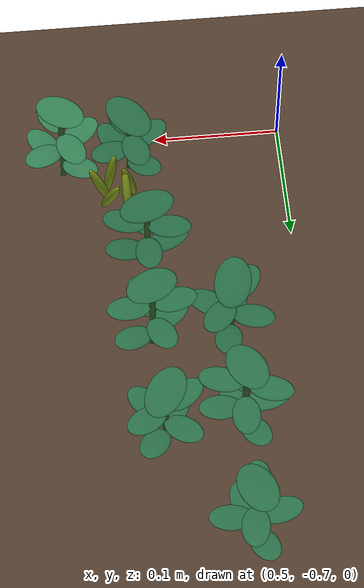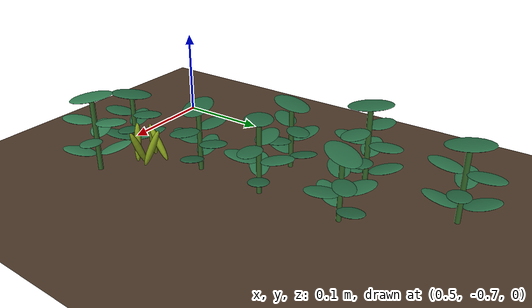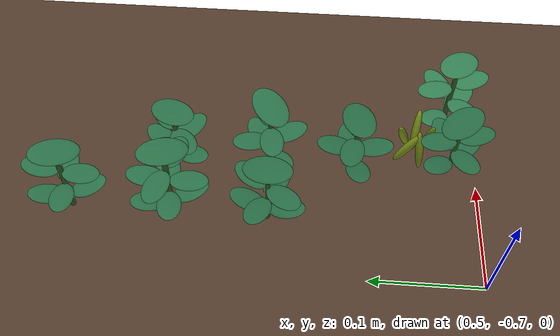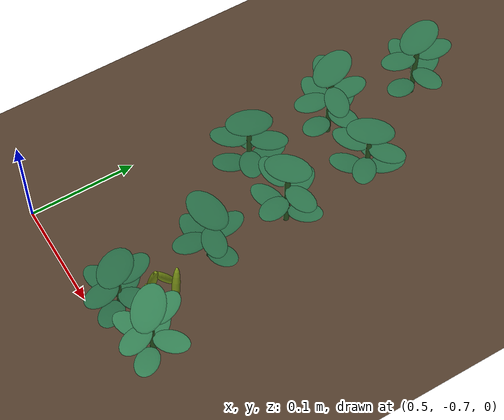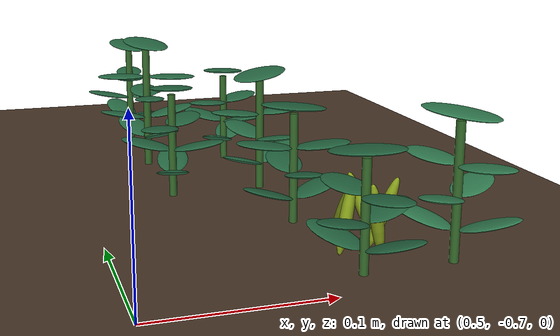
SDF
<sdf version="1.9">
 <world name="jim_field">
  <model name="ground_plane">
   <static>true</static>
   <link name="link">
    <collision name="collision">
     <geometry><plane><normal>0 0 1</normal><size>40 40</size></plane></geometry>
    </collision>
    <visual name="visual">
     <geometry><plane><normal>0 0 1</normal><size>40 40</size></plane></geometry>
     <material>
      <ambient>0.20 0.15 0.11 1</ambient>
      <diffuse>0.30 0.22 0.16 1</diffuse>
      <specular>0.01 0.01 0.01 1</specular>
     </material>
    </visual>
   </link>
  </model>
  <model name="field">
   <static>true</static>
   <pose>0.1837 -0.2516 0 0 0 0</pose>
   <model name="crop_15">
    <static>true</static>
    <pose>0.4390 -0.4249 0 0 0 0</pose>
    <link name="link">
     <visual name="stem">
      <pose>0 0 0.0314 0 0 0</pose>
      <geometry><cylinder><radius>0.0025</radius><length>0.0627</length></cylinder></geometry>
      <material>
       <ambient>0.10 0.22 0.09 1</ambient>
       <diffuse>0.20 0.40 0.16 1</diffuse>
       <specular>0.05 0.06 0.05 1</specular>
      </material>
     </visual>
     <visual name="leaflet_0_0">
      <pose>0.0111 -0.0133 0.0188 0 -0.300 5.4077</pose>
      <geometry><ellipsoid><radii>0.0170 0.0105 0.0016</radii></ellipsoid></geometry>
      <material>
       <ambient>0.075 0.208 0.116 1</ambient>
       <diffuse>0.139 0.395 0.251 1</diffuse>
       <specular>0.05 0.06 0.05 1</specular>
      </material>
     </visual>
     <visual name="leaflet_0_1">
      <pose>-0.0111 0.0133 0.0188 0 -0.300 8.5493</pose>
      <geometry><ellipsoid><radii>0.0170 0.0105 0.0016</radii></ellipsoid></geometry>
      <material>
       <ambient>0.075 0.208 0.116 1</ambient>
       <diffuse>0.139 0.395 0.251 1</diffuse>
       <specular>0.05 0.06 0.05 1</specular>
      </material>
     </visual>
     <visual name="leaflet_1_0">
      <pose>0.0154 0.0079 0.0318 0 -0.200 6.7577</pose>
      <geometry><ellipsoid><radii>0.0170 0.0105 0.0016</radii></ellipsoid></geometry>
      <material>
       <ambient>0.075 0.208 0.116 1</ambient>
       <diffuse>0.139 0.395 0.251 1</diffuse>
       <specular>0.05 0.06 0.05 1</specular>
      </material>
     </visual>
     <visual name="leaflet_1_1">
      <pose>-0.0154 -0.0079 0.0318 0 -0.200 9.8993</pose>
      <geometry><ellipsoid><radii>0.0170 0.0105 0.0016</radii></ellipsoid></geometry>
      <material>
       <ambient>0.075 0.208 0.116 1</ambient>
       <diffuse>0.139 0.395 0.251 1</diffuse>
       <specular>0.05 0.06 0.05 1</specular>
      </material>
     </visual>
     <visual name="leaflet_2_0">
      <pose>-0.0044 0.0168 0.0447 0 -0.100 8.1077</pose>
      <geometry><ellipsoid><radii>0.0170 0.0105 0.0016</radii></ellipsoid></geometry>
      <material>
       <ambient>0.075 0.208 0.116 1</ambient>
       <diffuse>0.139 0.395 0.251 1</diffuse>
       <specular>0.05 0.06 0.05 1</specular>
      </material>
     </visual>
     <visual name="leaflet_2_1">
      <pose>0.0044 -0.0168 0.0447 0 -0.100 11.2493</pose>
      <geometry><ellipsoid><radii>0.0170 0.0105 0.0016</radii></ellipsoid></geometry>
      <material>
       <ambient>0.075 0.208 0.116 1</ambient>
       <diffuse>0.139 0.395 0.251 1</diffuse>
       <specular>0.05 0.06 0.05 1</specular>
      </material>
     </visual>
     <visual name="leaflet_terminal">
      <pose>0 0 0.0667 0 -0.12 5.4077</pose>
      <geometry><ellipsoid><radii>0.0215 0.0140 0.0018</radii></ellipsoid></geometry>
      <material>
       <ambient>0.075 0.208 0.116 1</ambient>
       <diffuse>0.139 0.395 0.251 1</diffuse>
       <specular>0.05 0.06 0.05 1</specular>
      </material>
     </visual>
    </link>
   </model>
   <model name="crop_16">
    <static>true</static>
    <pose>0.4926 -0.4225 0 0 0 0</pose>
    <link name="link">
     <visual name="stem">
      <pose>0 0 0.0389 0 0 0</pose>
      <geometry><cylinder><radius>0.0026</radius><length>0.0779</length></cylinder></geometry>
      <material>
       <ambient>0.10 0.22 0.09 1</ambient>
       <diffuse>0.20 0.40 0.16 1</diffuse>
       <specular>0.05 0.06 0.05 1</specular>
      </material>
     </visual>
     <visual name="leaflet_0_0">
      <pose>-0.0133 0.0123 0.0234 0 -0.300 2.3966</pose>
      <geometry><ellipsoid><radii>0.0170 0.0105 0.0016</radii></ellipsoid></geometry>
      <material>
       <ambient>0.100 0.250 0.150 1</ambient>
       <diffuse>0.190 0.480 0.310 1</diffuse>
       <specular>0.05 0.06 0.05 1</specular>
      </material>
     </visual>
     <visual name="leaflet_0_1">
      <pose>0.0133 -0.0123 0.0234 0 -0.300 5.5382</pose>
      <geometry><ellipsoid><radii>0.0170 0.0105 0.0016</radii></ellipsoid></geometry>
      <material>
       <ambient>0.100 0.250 0.150 1</ambient>
       <diffuse>0.190 0.480 0.310 1</diffuse>
       <specular>0.05 0.06 0.05 1</specular>
      </material>
     </visual>
     <visual name="leaflet_1_0">
      <pose>-0.0149 -0.0103 0.0395 0 -0.200 3.7466</pose>
      <geometry><ellipsoid><radii>0.0170 0.0105 0.0016</radii></ellipsoid></geometry>
      <material>
       <ambient>0.100 0.250 0.150 1</ambient>
       <diffuse>0.190 0.480 0.310 1</diffuse>
       <specular>0.05 0.06 0.05 1</specular>
      </material>
     </visual>
     <visual name="leaflet_1_1">
      <pose>0.0149 0.0103 0.0395 0 -0.200 6.8882</pose>
      <geometry><ellipsoid><radii>0.0170 0.0105 0.0016</radii></ellipsoid></geometry>
      <material>
       <ambient>0.100 0.250 0.150 1</ambient>
       <diffuse>0.190 0.480 0.310 1</diffuse>
       <specular>0.05 0.06 0.05 1</specular>
      </material>
     </visual>
     <visual name="leaflet_2_0">
      <pose>0.0068 -0.0168 0.0556 0 -0.100 5.0966</pose>
      <geometry><ellipsoid><radii>0.0170 0.0105 0.0016</radii></ellipsoid></geometry>
      <material>
       <ambient>0.100 0.250 0.150 1</ambient>
       <diffuse>0.190 0.480 0.310 1</diffuse>
       <specular>0.05 0.06 0.05 1</specular>
      </material>
     </visual>
     <visual name="leaflet_2_1">
      <pose>-0.0068 0.0168 0.0556 0 -0.100 8.2382</pose>
      <geometry><ellipsoid><radii>0.0170 0.0105 0.0016</radii></ellipsoid></geometry>
      <material>
       <ambient>0.100 0.250 0.150 1</ambient>
       <diffuse>0.190 0.480 0.310 1</diffuse>
       <specular>0.05 0.06 0.05 1</specular>
      </material>
     </visual>
     <visual name="leaflet_terminal">
      <pose>0 0 0.0819 0 -0.12 2.3966</pose>
      <geometry><ellipsoid><radii>0.0215 0.0140 0.0018</radii></ellipsoid></geometry>
      <material>
       <ambient>0.100 0.250 0.150 1</ambient>
       <diffuse>0.190 0.480 0.310 1</diffuse>
       <specular>0.05 0.06 0.05 1</specular>
      </material>
     </visual>
    </link>
   </model>
   <model name="crop_32">
    <static>true</static>
    <pose>0.4324 -0.3349 0 0 0 0</pose>
    <link name="link">
     <visual name="stem">
      <pose>0 0 0.0337 0 0 0</pose>
      <geometry><cylinder><radius>0.0025</radius><length>0.0675</length></cylinder></geometry>
      <material>
       <ambient>0.10 0.22 0.09 1</ambient>
       <diffuse>0.20 0.40 0.16 1</diffuse>
       <specular>0.05 0.06 0.05 1</specular>
      </material>
     </visual>
     <visual name="leaflet_0_0">
      <pose>-0.0171 -0.0039 0.0202 0 -0.300 3.3679</pose>
      <geometry><ellipsoid><radii>0.0170 0.0105 0.0016</radii></ellipsoid></geometry>
      <material>
       <ambient>0.074 0.207 0.116 1</ambient>
       <diffuse>0.138 0.394 0.250 1</diffuse>
       <specular>0.05 0.06 0.05 1</specular>
      </material>
     </visual>
     <visual name="leaflet_0_1">
      <pose>0.0171 0.0039 0.0202 0 -0.300 6.5095</pose>
      <geometry><ellipsoid><radii>0.0170 0.0105 0.0016</radii></ellipsoid></geometry>
      <material>
       <ambient>0.074 0.207 0.116 1</ambient>
       <diffuse>0.138 0.394 0.250 1</diffuse>
       <specular>0.05 0.06 0.05 1</specular>
      </material>
     </visual>
     <visual name="leaflet_1_0">
      <pose>0.0001 -0.0176 0.0342 0 -0.200 4.7179</pose>
      <geometry><ellipsoid><radii>0.0170 0.0105 0.0016</radii></ellipsoid></geometry>
      <material>
       <ambient>0.074 0.207 0.116 1</ambient>
       <diffuse>0.138 0.394 0.250 1</diffuse>
       <specular>0.05 0.06 0.05 1</specular>
      </material>
     </visual>
     <visual name="leaflet_1_1">
      <pose>-0.0001 0.0176 0.0342 0 -0.200 7.8595</pose>
      <geometry><ellipsoid><radii>0.0170 0.0105 0.0016</radii></ellipsoid></geometry>
      <material>
       <ambient>0.074 0.207 0.116 1</ambient>
       <diffuse>0.138 0.394 0.250 1</diffuse>
       <specular>0.05 0.06 0.05 1</specular>
      </material>
     </visual>
     <visual name="leaflet_2_0">
      <pose>0.0172 -0.0038 0.0481 0 -0.100 6.0679</pose>
      <geometry><ellipsoid><radii>0.0170 0.0105 0.0016</radii></ellipsoid></geometry>
      <material>
       <ambient>0.074 0.207 0.116 1</ambient>
       <diffuse>0.138 0.394 0.250 1</diffuse>
       <specular>0.05 0.06 0.05 1</specular>
      </material>
     </visual>
     <visual name="leaflet_2_1">
      <pose>-0.0172 0.0038 0.0481 0 -0.100 9.2095</pose>
      <geometry><ellipsoid><radii>0.0170 0.0105 0.0016</radii></ellipsoid></geometry>
      <material>
       <ambient>0.074 0.207 0.116 1</ambient>
       <diffuse>0.138 0.394 0.250 1</diffuse>
       <specular>0.05 0.06 0.05 1</specular>
      </material>
     </visual>
     <visual name="leaflet_terminal">
      <pose>0 0 0.0715 0 -0.12 3.3679</pose>
      <geometry><ellipsoid><radii>0.0215 0.0140 0.0018</radii></ellipsoid></geometry>
      <material>
       <ambient>0.074 0.207 0.116 1</ambient>
       <diffuse>0.138 0.394 0.250 1</diffuse>
       <specular>0.05 0.06 0.05 1</specular>
      </material>
     </visual>
    </link>
   </model>
   <model name="crop_48">
    <static>true</static>
    <pose>0.3744 -0.2598 0 0 0 0</pose>
    <link name="link">
     <visual name="stem">
      <pose>0 0 0.0342 0 0 0</pose>
      <geometry><cylinder><radius>0.0025</radius><length>0.0685</length></cylinder></geometry>
      <material>
       <ambient>0.10 0.22 0.09 1</ambient>
       <diffuse>0.20 0.40 0.16 1</diffuse>
       <specular>0.05 0.06 0.05 1</specular>
      </material>
     </visual>
     <visual name="leaflet_0_0">
      <pose>-0.0036 -0.0173 0.0205 0 -0.300 4.5066</pose>
      <geometry><ellipsoid><radii>0.0170 0.0105 0.0016</radii></ellipsoid></geometry>
      <material>
       <ambient>0.076 0.210 0.118 1</ambient>
       <diffuse>0.142 0.400 0.254 1</diffuse>
       <specular>0.05 0.06 0.05 1</specular>
      </material>
     </visual>
     <visual name="leaflet_0_1">
      <pose>0.0036 0.0173 0.0205 0 -0.300 7.6482</pose>
      <geometry><ellipsoid><radii>0.0170 0.0105 0.0016</radii></ellipsoid></geometry>
      <material>
       <ambient>0.076 0.210 0.118 1</ambient>
       <diffuse>0.142 0.400 0.254 1</diffuse>
       <specular>0.05 0.06 0.05 1</specular>
      </material>
     </visual>
     <visual name="leaflet_1_0">
      <pose>0.0161 -0.0073 0.0347 0 -0.200 5.8566</pose>
      <geometry><ellipsoid><radii>0.0170 0.0105 0.0016</radii></ellipsoid></geometry>
      <material>
       <ambient>0.076 0.210 0.118 1</ambient>
       <diffuse>0.142 0.400 0.254 1</diffuse>
       <specular>0.05 0.06 0.05 1</specular>
      </material>
     </visual>
     <visual name="leaflet_1_1">
      <pose>-0.0161 0.0073 0.0347 0 -0.200 8.9982</pose>
      <geometry><ellipsoid><radii>0.0170 0.0105 0.0016</radii></ellipsoid></geometry>
      <material>
       <ambient>0.076 0.210 0.118 1</ambient>
       <diffuse>0.142 0.400 0.254 1</diffuse>
       <specular>0.05 0.06 0.05 1</specular>
      </material>
     </visual>
     <visual name="leaflet_2_0">
      <pose>0.0106 0.0141 0.0488 0 -0.100 7.2066</pose>
      <geometry><ellipsoid><radii>0.0170 0.0105 0.0016</radii></ellipsoid></geometry>
      <material>
       <ambient>0.076 0.210 0.118 1</ambient>
       <diffuse>0.142 0.400 0.254 1</diffuse>
       <specular>0.05 0.06 0.05 1</specular>
      </material>
     </visual>
     <visual name="leaflet_2_1">
      <pose>-0.0106 -0.0141 0.0488 0 -0.100 10.3482</pose>
      <geometry><ellipsoid><radii>0.0170 0.0105 0.0016</radii></ellipsoid></geometry>
      <material>
       <ambient>0.076 0.210 0.118 1</ambient>
       <diffuse>0.142 0.400 0.254 1</diffuse>
       <specular>0.05 0.06 0.05 1</specular>
      </material>
     </visual>
     <visual name="leaflet_terminal">
      <pose>0 0 0.0725 0 -0.12 4.5066</pose>
      <geometry><ellipsoid><radii>0.0215 0.0140 0.0018</radii></ellipsoid></geometry>
      <material>
       <ambient>0.076 0.210 0.118 1</ambient>
       <diffuse>0.142 0.400 0.254 1</diffuse>
       <specular>0.05 0.06 0.05 1</specular>
      </material>
     </visual>
    </link>
   </model>
   <model name="crop_49">
    <static>true</static>
    <pose>0.4353 -0.2583 0 0 0 0</pose>
    <link name="link">
     <visual name="stem">
      <pose>0 0 0.0373 0 0 0</pose>
      <geometry><cylinder><radius>0.0026</radius><length>0.0747</length></cylinder></geometry>
      <material>
       <ambient>0.10 0.22 0.09 1</ambient>
       <diffuse>0.20 0.40 0.16 1</diffuse>
       <specular>0.05 0.06 0.05 1</specular>
      </material>
     </visual>
     <visual name="leaflet_0_0">
      <pose>0.0150 0.0098 0.0224 0 -0.300 0.5796</pose>
      <geometry><ellipsoid><radii>0.0170 0.0105 0.0016</radii></ellipsoid></geometry>
      <material>
       <ambient>0.083 0.221 0.127 1</ambient>
       <diffuse>0.155 0.422 0.270 1</diffuse>
       <specular>0.05 0.06 0.05 1</specular>
      </material>
     </visual>
     <visual name="leaflet_0_1">
      <pose>-0.0150 -0.0098 0.0224 0 -0.300 3.7212</pose>
      <geometry><ellipsoid><radii>0.0170 0.0105 0.0016</radii></ellipsoid></geometry>
      <material>
       <ambient>0.083 0.221 0.127 1</ambient>
       <diffuse>0.155 0.422 0.270 1</diffuse>
       <specular>0.05 0.06 0.05 1</specular>
      </material>
     </visual>
     <visual name="leaflet_1_0">
      <pose>-0.0063 0.0168 0.0378 0 -0.200 1.9296</pose>
      <geometry><ellipsoid><radii>0.0170 0.0105 0.0016</radii></ellipsoid></geometry>
      <material>
       <ambient>0.083 0.221 0.127 1</ambient>
       <diffuse>0.155 0.422 0.270 1</diffuse>
       <specular>0.05 0.06 0.05 1</specular>
      </material>
     </visual>
     <visual name="leaflet_1_1">
      <pose>0.0063 -0.0168 0.0378 0 -0.200 5.0712</pose>
      <geometry><ellipsoid><radii>0.0170 0.0105 0.0016</radii></ellipsoid></geometry>
      <material>
       <ambient>0.083 0.221 0.127 1</ambient>
       <diffuse>0.155 0.422 0.270 1</diffuse>
       <specular>0.05 0.06 0.05 1</specular>
      </material>
     </visual>
     <visual name="leaflet_2_0">
      <pose>-0.0178 -0.0025 0.0533 0 -0.100 3.2796</pose>
      <geometry><ellipsoid><radii>0.0170 0.0105 0.0016</radii></ellipsoid></geometry>
      <material>
       <ambient>0.083 0.221 0.127 1</ambient>
       <diffuse>0.155 0.422 0.270 1</diffuse>
       <specular>0.05 0.06 0.05 1</specular>
      </material>
     </visual>
     <visual name="leaflet_2_1">
      <pose>0.0178 0.0025 0.0533 0 -0.100 6.4212</pose>
      <geometry><ellipsoid><radii>0.0170 0.0105 0.0016</radii></ellipsoid></geometry>
      <material>
       <ambient>0.083 0.221 0.127 1</ambient>
       <diffuse>0.155 0.422 0.270 1</diffuse>
       <specular>0.05 0.06 0.05 1</specular>
      </material>
     </visual>
     <visual name="leaflet_terminal">
      <pose>0 0 0.0787 0 -0.12 0.5796</pose>
      <geometry><ellipsoid><radii>0.0215 0.0140 0.0018</radii></ellipsoid></geometry>
      <material>
       <ambient>0.083 0.221 0.127 1</ambient>
       <diffuse>0.155 0.422 0.270 1</diffuse>
       <specular>0.05 0.06 0.05 1</specular>
      </material>
     </visual>
    </link>
   </model>
   <model name="crop_65">
    <static>true</static>
    <pose>0.3736 -0.1753 0 0 0 0</pose>
    <link name="link">
     <visual name="stem">
      <pose>0 0 0.0435 0 0 0</pose>
      <geometry><cylinder><radius>0.0027</radius><length>0.0870</length></cylinder></geometry>
      <material>
       <ambient>0.10 0.22 0.09 1</ambient>
       <diffuse>0.20 0.40 0.16 1</diffuse>
       <specular>0.05 0.06 0.05 1</specular>
      </material>
     </visual>
     <visual name="leaflet_0_0">
      <pose>-0.0068 0.0174 0.0261 0 -0.300 1.9423</pose>
      <geometry><ellipsoid><radii>0.0170 0.0105 0.0016</radii></ellipsoid></geometry>
      <material>
       <ambient>0.082 0.220 0.126 1</ambient>
       <diffuse>0.155 0.421 0.269 1</diffuse>
       <specular>0.05 0.06 0.05 1</specular>
      </material>
     </visual>
     <visual name="leaflet_0_1">
      <pose>0.0068 -0.0174 0.0261 0 -0.300 5.0839</pose>
      <geometry><ellipsoid><radii>0.0170 0.0105 0.0016</radii></ellipsoid></geometry>
      <material>
       <ambient>0.082 0.220 0.126 1</ambient>
       <diffuse>0.155 0.421 0.269 1</diffuse>
       <specular>0.05 0.06 0.05 1</specular>
      </material>
     </visual>
     <visual name="leaflet_1_0">
      <pose>-0.0184 -0.0028 0.0396 0 -0.200 3.2923</pose>
      <geometry><ellipsoid><radii>0.0170 0.0105 0.0016</radii></ellipsoid></geometry>
      <material>
       <ambient>0.082 0.220 0.126 1</ambient>
       <diffuse>0.155 0.421 0.269 1</diffuse>
       <specular>0.05 0.06 0.05 1</specular>
      </material>
     </visual>
     <visual name="leaflet_1_1">
      <pose>0.0184 0.0028 0.0396 0 -0.200 6.4339</pose>
      <geometry><ellipsoid><radii>0.0170 0.0105 0.0016</radii></ellipsoid></geometry>
      <material>
       <ambient>0.082 0.220 0.126 1</ambient>
       <diffuse>0.155 0.421 0.269 1</diffuse>
       <specular>0.05 0.06 0.05 1</specular>
      </material>
     </visual>
     <visual name="leaflet_2_0">
      <pose>-0.0013 -0.0186 0.0531 0 -0.100 4.6423</pose>
      <geometry><ellipsoid><radii>0.0170 0.0105 0.0016</radii></ellipsoid></geometry>
      <material>
       <ambient>0.082 0.220 0.126 1</ambient>
       <diffuse>0.155 0.421 0.269 1</diffuse>
       <specular>0.05 0.06 0.05 1</specular>
      </material>
     </visual>
     <visual name="leaflet_2_1">
      <pose>0.0013 0.0186 0.0531 0 -0.100 7.7839</pose>
      <geometry><ellipsoid><radii>0.0170 0.0105 0.0016</radii></ellipsoid></geometry>
      <material>
       <ambient>0.082 0.220 0.126 1</ambient>
       <diffuse>0.155 0.421 0.269 1</diffuse>
       <specular>0.05 0.06 0.05 1</specular>
      </material>
     </visual>
     <visual name="leaflet_3_0">
      <pose>0.0179 -0.0053 0.0666 0 0.000 5.9923</pose>
      <geometry><ellipsoid><radii>0.0170 0.0105 0.0016</radii></ellipsoid></geometry>
      <material>
       <ambient>0.082 0.220 0.126 1</ambient>
       <diffuse>0.155 0.421 0.269 1</diffuse>
       <specular>0.05 0.06 0.05 1</specular>
      </material>
     </visual>
     <visual name="leaflet_3_1">
      <pose>-0.0179 0.0053 0.0666 0 0.000 9.1339</pose>
      <geometry><ellipsoid><radii>0.0170 0.0105 0.0016</radii></ellipsoid></geometry>
      <material>
       <ambient>0.082 0.220 0.126 1</ambient>
       <diffuse>0.155 0.421 0.269 1</diffuse>
       <specular>0.05 0.06 0.05 1</specular>
      </material>
     </visual>
     <visual name="leaflet_terminal">
      <pose>0 0 0.0910 0 -0.12 1.9423</pose>
      <geometry><ellipsoid><radii>0.0215 0.0140 0.0018</radii></ellipsoid></geometry>
      <material>
       <ambient>0.082 0.220 0.126 1</ambient>
       <diffuse>0.155 0.421 0.269 1</diffuse>
       <specular>0.05 0.06 0.05 1</specular>
      </material>
     </visual>
    </link>
   </model>
   <model name="crop_66">
    <static>true</static>
    <pose>0.4330 -0.1729 0 0 0 0</pose>
    <link name="link">
     <visual name="stem">
      <pose>0 0 0.0319 0 0 0</pose>
      <geometry><cylinder><radius>0.0025</radius><length>0.0638</length></cylinder></geometry>
      <material>
       <ambient>0.10 0.22 0.09 1</ambient>
       <diffuse>0.20 0.40 0.16 1</diffuse>
       <specular>0.05 0.06 0.05 1</specular>
      </material>
     </visual>
     <visual name="leaflet_0_0">
      <pose>-0.0089 -0.0150 0.0191 0 -0.300 4.1758</pose>
      <geometry><ellipsoid><radii>0.0170 0.0105 0.0016</radii></ellipsoid></geometry>
      <material>
       <ambient>0.081 0.219 0.125 1</ambient>
       <diffuse>0.153 0.418 0.267 1</diffuse>
       <specular>0.05 0.06 0.05 1</specular>
      </material>
     </visual>
     <visual name="leaflet_0_1">
      <pose>0.0089 0.0150 0.0191 0 -0.300 7.3173</pose>
      <geometry><ellipsoid><radii>0.0170 0.0105 0.0016</radii></ellipsoid></geometry>
      <material>
       <ambient>0.081 0.219 0.125 1</ambient>
       <diffuse>0.153 0.418 0.267 1</diffuse>
       <specular>0.05 0.06 0.05 1</specular>
      </material>
     </visual>
     <visual name="leaflet_1_0">
      <pose>0.0126 -0.0120 0.0323 0 -0.200 5.5258</pose>
      <geometry><ellipsoid><radii>0.0170 0.0105 0.0016</radii></ellipsoid></geometry>
      <material>
       <ambient>0.081 0.219 0.125 1</ambient>
       <diffuse>0.153 0.418 0.267 1</diffuse>
       <specular>0.05 0.06 0.05 1</specular>
      </material>
     </visual>
     <visual name="leaflet_1_1">
      <pose>-0.0126 0.0120 0.0323 0 -0.200 8.6673</pose>
      <geometry><ellipsoid><radii>0.0170 0.0105 0.0016</radii></ellipsoid></geometry>
      <material>
       <ambient>0.081 0.219 0.125 1</ambient>
       <diffuse>0.153 0.418 0.267 1</diffuse>
       <specular>0.05 0.06 0.05 1</specular>
      </material>
     </visual>
     <visual name="leaflet_2_0">
      <pose>0.0144 0.0097 0.0455 0 -0.100 6.8758</pose>
      <geometry><ellipsoid><radii>0.0170 0.0105 0.0016</radii></ellipsoid></geometry>
      <material>
       <ambient>0.081 0.219 0.125 1</ambient>
       <diffuse>0.153 0.418 0.267 1</diffuse>
       <specular>0.05 0.06 0.05 1</specular>
      </material>
     </visual>
     <visual name="leaflet_2_1">
      <pose>-0.0144 -0.0097 0.0455 0 -0.100 10.0173</pose>
      <geometry><ellipsoid><radii>0.0170 0.0105 0.0016</radii></ellipsoid></geometry>
      <material>
       <ambient>0.081 0.219 0.125 1</ambient>
       <diffuse>0.153 0.418 0.267 1</diffuse>
       <specular>0.05 0.06 0.05 1</specular>
      </material>
     </visual>
     <visual name="leaflet_terminal">
      <pose>0 0 0.0678 0 -0.12 4.1758</pose>
      <geometry><ellipsoid><radii>0.0215 0.0140 0.0018</radii></ellipsoid></geometry>
      <material>
       <ambient>0.081 0.219 0.125 1</ambient>
       <diffuse>0.153 0.418 0.267 1</diffuse>
       <specular>0.05 0.06 0.05 1</specular>
      </material>
     </visual>
    </link>
   </model>
   <model name="crop_82">
    <static>true</static>
    <pose>0.3758 -0.0839 0 0 0 0</pose>
    <link name="link">
     <visual name="stem">
      <pose>0 0 0.0372 0 0 0</pose>
      <geometry><cylinder><radius>0.0026</radius><length>0.0743</length></cylinder></geometry>
      <material>
       <ambient>0.10 0.22 0.09 1</ambient>
       <diffuse>0.20 0.40 0.16 1</diffuse>
       <specular>0.05 0.06 0.05 1</specular>
      </material>
     </visual>
     <visual name="leaflet_0_0">
      <pose>-0.0054 0.0171 0.0223 0 -0.300 1.8753</pose>
      <geometry><ellipsoid><radii>0.0170 0.0105 0.0016</radii></ellipsoid></geometry>
      <material>
       <ambient>0.082 0.219 0.126 1</ambient>
       <diffuse>0.153 0.419 0.267 1</diffuse>
       <specular>0.05 0.06 0.05 1</specular>
      </material>
     </visual>
     <visual name="leaflet_0_1">
      <pose>0.0054 -0.0171 0.0223 0 -0.300 5.0169</pose>
      <geometry><ellipsoid><radii>0.0170 0.0105 0.0016</radii></ellipsoid></geometry>
      <material>
       <ambient>0.082 0.219 0.126 1</ambient>
       <diffuse>0.153 0.419 0.267 1</diffuse>
       <specular>0.05 0.06 0.05 1</specular>
      </material>
     </visual>
     <visual name="leaflet_1_0">
      <pose>-0.0179 -0.0015 0.0377 0 -0.200 3.2253</pose>
      <geometry><ellipsoid><radii>0.0170 0.0105 0.0016</radii></ellipsoid></geometry>
      <material>
       <ambient>0.082 0.219 0.126 1</ambient>
       <diffuse>0.153 0.419 0.267 1</diffuse>
       <specular>0.05 0.06 0.05 1</specular>
      </material>
     </visual>
     <visual name="leaflet_1_1">
      <pose>0.0179 0.0015 0.0377 0 -0.200 6.3669</pose>
      <geometry><ellipsoid><radii>0.0170 0.0105 0.0016</radii></ellipsoid></geometry>
      <material>
       <ambient>0.082 0.219 0.126 1</ambient>
       <diffuse>0.153 0.419 0.267 1</diffuse>
       <specular>0.05 0.06 0.05 1</specular>
      </material>
     </visual>
     <visual name="leaflet_2_0">
      <pose>-0.0025 -0.0178 0.0530 0 -0.100 4.5753</pose>
      <geometry><ellipsoid><radii>0.0170 0.0105 0.0016</radii></ellipsoid></geometry>
      <material>
       <ambient>0.082 0.219 0.126 1</ambient>
       <diffuse>0.153 0.419 0.267 1</diffuse>
       <specular>0.05 0.06 0.05 1</specular>
      </material>
     </visual>
     <visual name="leaflet_2_1">
      <pose>0.0025 0.0178 0.0530 0 -0.100 7.7169</pose>
      <geometry><ellipsoid><radii>0.0170 0.0105 0.0016</radii></ellipsoid></geometry>
      <material>
       <ambient>0.082 0.219 0.126 1</ambient>
       <diffuse>0.153 0.419 0.267 1</diffuse>
       <specular>0.05 0.06 0.05 1</specular>
      </material>
     </visual>
     <visual name="leaflet_terminal">
      <pose>0 0 0.0783 0 -0.12 1.8753</pose>
      <geometry><ellipsoid><radii>0.0215 0.0140 0.0018</radii></ellipsoid></geometry>
      <material>
       <ambient>0.082 0.219 0.126 1</ambient>
       <diffuse>0.153 0.419 0.267 1</diffuse>
       <specular>0.05 0.06 0.05 1</specular>
      </material>
     </visual>
    </link>
   </model>
   <model name="weed_far_9">
    <static>true</static>
    <pose>0.4529 -0.3919 0 0 0 0</pose>
    <link name="link">
     <visual name="blade_0">
      <pose>-0.0088 0.0078 0.0213 -0.3412 -0.3868 2.4188</pose>
      <geometry><ellipsoid><radii>0.0037 0.0037 0.0213</radii></ellipsoid></geometry>
      <material>
       <ambient>0.24 0.30 0.04 1</ambient>
       <diffuse>0.52 0.62 0.10 1</diffuse>
       <specular>0.05 0.06 0.05 1</specular>
      </material>
     </visual>
     <visual name="blade_1">
      <pose>-0.0114 -0.0028 0.0213 0.0600 -0.2420 3.3848</pose>
      <geometry><ellipsoid><radii>0.0037 0.0037 0.0213</radii></ellipsoid></geometry>
      <material>
       <ambient>0.24 0.30 0.04 1</ambient>
       <diffuse>0.52 0.62 0.10 1</diffuse>
       <specular>0.05 0.06 0.05 1</specular>
      </material>
     </visual>
     <visual name="blade_2">
      <pose>0.0030 -0.0113 0.0213 0.2091 0.0561 4.9746</pose>
      <geometry><ellipsoid><radii>0.0037 0.0037 0.0213</radii></ellipsoid></geometry>
      <material>
       <ambient>0.24 0.30 0.04 1</ambient>
       <diffuse>0.52 0.62 0.10 1</diffuse>
       <specular>0.05 0.06 0.05 1</specular>
      </material>
     </visual>
     <visual name="blade_3">
      <pose>0.0117 -0.0010 0.0213 0.0312 0.3740 6.2000</pose>
      <geometry><ellipsoid><radii>0.0037 0.0037 0.0213</radii></ellipsoid></geometry>
      <material>
       <ambient>0.24 0.30 0.04 1</ambient>
       <diffuse>0.52 0.62 0.10 1</diffuse>
       <specular>0.05 0.06 0.05 1</specular>
      </material>
     </visual>
     <visual name="blade_4">
      <pose>0.0043 0.0109 0.0213 -0.3799 0.1508 7.4761</pose>
      <geometry><ellipsoid><radii>0.0037 0.0037 0.0213</radii></ellipsoid></geometry>
      <material>
       <ambient>0.24 0.30 0.04 1</ambient>
       <diffuse>0.52 0.62 0.10 1</diffuse>
       <specular>0.05 0.06 0.05 1</specular>
      </material>
     </visual>
    </link>
   </model>
  </model>
 </world>
</sdf>
